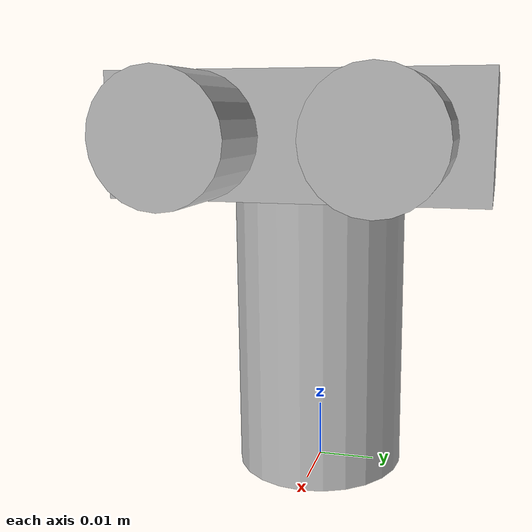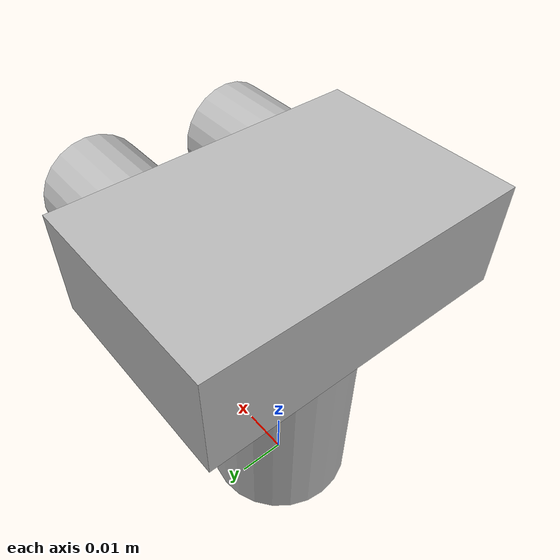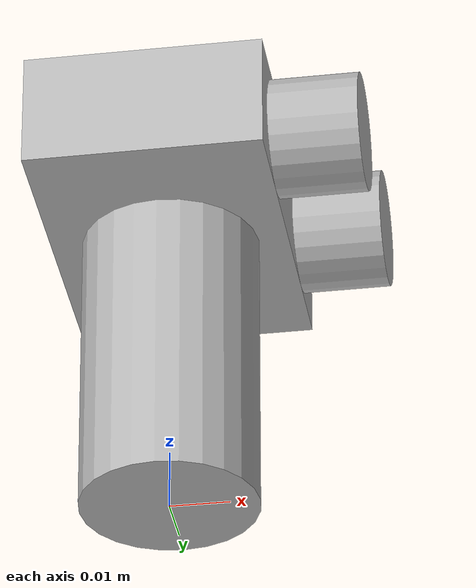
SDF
<?xml version="1.0"?>

<!--

  Meet the Visions.

  The visual system for a MiM. Can detect and
  range objects within its visual cone. Allows
  the MiM to "stick its neck out" for mapping.

-->

<sdf version="1.6">
  <model name="vision">

    <!--
      The Neck of the Visual System
      -----------------------------
    -->

    <link name="neck">

      <pose>0 0 0.025 0 0 0</pose>
      <inertial>
        <mass>0.1</mass>
        <inertia>
          <ixx>0.00002646</ixx>
          <iyy>0.00002646</iyy>
          <izz>0.00001125</izz>
          <ixy>0</ixy>
          <iyz>0</iyz>
          <ixz>0</ixz>
        </inertia>
      </inertial>

      <collision name="neck_collision">
        <geometry>
          <cylinder>
            <radius>0.015</radius>
            <length>0.050</length>
          </cylinder>
        </geometry>
      </collision>

      <visual name="neck_visual">
        <geometry>
          <cylinder>
            <radius>0.015</radius>
            <length>0.050</length>
          </cylinder>
        </geometry>
      </visual>
    </link>

    <!--
      The Head of the Visual System
      -----------------------------
    -->

    <link name="head">

      <pose>0 0 0.060 0 0 0</pose>
      <inertial>
        <mass>0.1</mass>
        <inertia>
          <ixx>0.00003333</ixx>
          <iyy>0.00001667</iyy>
          <izz>0.00004333</izz>
          <ixy>0</ixy>
          <iyz>0</iyz>
          <ixz>0</ixz>
        </inertia>
      </inertial>

      <collision name="head_collision">
        <geometry>
          <box><size>0.04 0.06 0.02</size></box>
        </geometry>
      </collision>

      <visual name="head_visual">
        <geometry>
          <box><size>0.04 0.06 0.02</size></box>
        </geometry>
      </visual>
    </link>

    <!--
      The Top Joint of the Neck
      -------------------------

      The bottom is attached to the MiM.
    -->

    <joint name="neck_top_joint" type="revolute">

      <pose>0 0 -0.01 0 0 0</pose>
      <parent>neck</parent>
      <child>head</child>

      <axis>
        <xyz>0 0 1</xyz>
        <initial_position>-1.3091</initial_position>
        <limit>
          <lower>-1.309</lower>
          <upper>1.309</upper>
        </limit>
      </axis>
    </joint>

    <!--
      The Left Eye
      ------------

      The reciever for Ultrasonic sensor is on
      this eye.
    -->

    <link name="eye_left">

      <pose>0.0275 0.015 0.06 0 1.5708 3.1416</pose>
      <inertial>
        <mass>0.05</mass>
        <inertia>
          <ixx>0.00000219</ixx>
          <iyy>0.00000219</iyy>
          <izz>0.00000250</izz>
          <ixy>0</ixy>
          <iyz>0</iyz>
          <ixz>0</ixz>
        </inertia>
      </inertial>

      <collision name="eye_left_collision">
        <geometry>
          <cylinder>
            <radius>0.010</radius>
            <length>0.015</length>
          </cylinder>
        </geometry>
      </collision>

      <visual name="eye_left_visual">
        <geometry>
          <cylinder>
            <radius>0.010</radius>
            <length>0.015</length>
          </cylinder>
        </geometry>
      </visual>

      <!--
        A Ray sensor acting as an Ultrasonic sensor.
      -->
      <sensor name="sonar_sensor" type="ray">
        <pose>0 0 0 0 1.5708 0</pose>
        <always_on>1</always_on>
        <update_rate>100</update_rate>
        <visualize>1</visualize>

        <ray>
          <scan>
            <horizontal>
              <samples>32</samples>
              <resolution>1</resolution>
              <min_angle>-0.1309</min_angle>
              <max_angle>0.1309</max_angle>
            </horizontal>
          </scan>

          <range>
            <min>0.02</min>
            <max>5.00</max>
            <resolution>0.02</resolution>
          </range>
        </ray>

      </sensor>
    </link>

    <!--
      Fix the Eye to the Head.
    -->
    <joint name="eye_left_joint" type="fixed">
      <parent>head</parent>
      <child>eye_left</child>
    </joint>

    <!--
      The Right Eye
      -------------

      Simply for aesthetics.
    -->
    <link name="eye_right">

      <pose>0.0275 -0.015 0.06 0 1.5708 0</pose>
      <inertial>
        <mass>0.05</mass>
        <inertia>
          <ixx>0.00000219</ixx>
          <iyy>0.00000219</iyy>
          <izz>0.00000250</izz>
          <ixy>0</ixy>
          <iyz>0</iyz>
          <ixz>0</ixz>
        </inertia>
      </inertial>
      <collision name="eye_right_collision">
        <geometry>
          <cylinder>
            <radius>0.010</radius>
            <length>0.015</length>
          </cylinder>
        </geometry>
      </collision>
      <visual name="eye_right_visual">
        <geometry>
          <cylinder>
            <radius>0.010</radius>
            <length>0.015</length>
          </cylinder>
        </geometry>
      </visual>
    </link>

    <!--
      Fix the Eye to the Head.
    -->
    <joint name="eye_right_joint" type="fixed">
      <parent>head</parent>
      <child>eye_right</child>
    </joint>

    <!--
      Vision Control System
      ---------------------
    -->

    <plugin name="vison_control" filename="vision.so">
      <velocity>0.5</velocity>
      <pid>
        <p>0.005</p>
        <i>0</i>
        <d>0</d>
      </pid>
    </plugin>

  </model>
</sdf>
